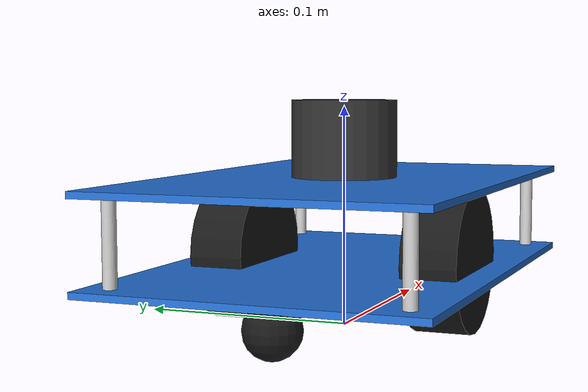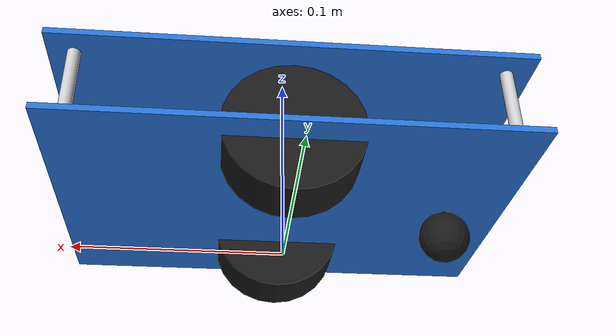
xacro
<?xml version="1.0"?>
<robot name="cslam_robot" xmlns:xacro="http://www.ros.org/wiki/xacro">

  <xacro:arg name="robot_name" default="robot2"/>
  <xacro:property name="p" value="$(arg robot_name)/"/>

  <xacro:property name="length" value="0.22"/>
  <xacro:property name="width" value="0.15"/>
  <xacro:property name="plate_thickness" value="0.003"/>
  <xacro:property name="bottom_plate_z" value="0.025"/>
  <xacro:property name="layer_gap" value="0.04"/>
  <xacro:property name="top_plate_z" value="${bottom_plate_z + layer_gap}"/>
  <xacro:property name="lidar_height" value="0.035"/>
  <xacro:property name="lidar_radius" value="0.024"/>
  <xacro:property name="lidar_x" value="0.0"/>
  <xacro:property name="wheel_radius" value="0.0325"/>
  <xacro:property name="wheel_width" value="0.025"/>
  <xacro:property name="wheel_separation" value="0.099"/>
  <xacro:property name="caster_radius" value="0.0125"/>
  <xacro:property name="caster_x" value="-0.08"/>

  <material name="plate"><color rgba="0.15 0.45 0.85 1"/></material>
  <material name="standoff"><color rgba="0.8 0.8 0.8 1"/></material>
  <material name="black"><color rgba="0.1 0.1 0.1 1"/></material>
  <material name="lidar"><color rgba="0.2 0.2 0.2 1"/></material>

  <link name="${p}base_link"/>

  <!-- Two chassis plates -->
  <xacro:macro name="plate" params="name z">
    <link name="${p}${name}">
      <visual>
        <origin xyz="0 0 ${plate_thickness / 2}"/>
        <geometry><box size="${length} ${width} ${plate_thickness}"/></geometry>
        <material name="plate"/>
      </visual>
      <collision>
        <origin xyz="0 0 ${plate_thickness / 2}"/>
        <geometry><box size="${length} ${width} ${plate_thickness}"/></geometry>
      </collision>
    </link>
    <joint name="${p}${name}_joint" type="fixed">
      <parent link="${p}base_link"/>
      <child link="${p}${name}"/>
      <origin xyz="0 0 ${z}"/>
    </joint>
  </xacro:macro>

  <xacro:plate name="bottom_plate" z="${bottom_plate_z}"/>
  <xacro:plate name="top_plate" z="${top_plate_z}"/>

  <!-- Standoffs between the plates (visual only) -->
  <xacro:macro name="standoff" params="name x y">
    <link name="${p}${name}">
      <visual>
        <geometry><cylinder radius="0.003" length="${layer_gap}"/></geometry>
        <material name="standoff"/>
      </visual>
    </link>
    <joint name="${p}${name}_joint" type="fixed">
      <parent link="${p}base_link"/>
      <child link="${p}${name}"/>
      <origin xyz="${x} ${y} ${bottom_plate_z + plate_thickness + layer_gap / 2}"/>
    </joint>
  </xacro:macro>

  <xacro:standoff name="standoff_fl" x="${length / 2 - 0.012}" y="${width / 2 - 0.012}"/>
  <xacro:standoff name="standoff_fr" x="${length / 2 - 0.012}" y="${-(width / 2 - 0.012)}"/>
  <xacro:standoff name="standoff_bl" x="${-(length / 2 - 0.012)}" y="${width / 2 - 0.012}"/>
  <xacro:standoff name="standoff_br" x="${-(length / 2 - 0.012)}" y="${-(width / 2 - 0.012)}"/>

  <!-- Drive wheels. Fixed joints: nothing publishes wheel joint states, and
       a continuous joint without them would not be drawn. -->
  <xacro:macro name="wheel" params="side y">
    <link name="${p}${side}_wheel">
      <visual>
        <origin rpy="${pi / 2} 0 0"/>
        <geometry><cylinder radius="${wheel_radius}" length="${wheel_width}"/></geometry>
        <material name="black"/>
      </visual>
    </link>
    <joint name="${p}${side}_wheel_joint" type="fixed">
      <parent link="${p}base_link"/>
      <child link="${p}${side}_wheel"/>
      <origin xyz="0 ${y} ${wheel_radius}"/>
    </joint>
  </xacro:macro>

  <xacro:wheel side="left" y="${wheel_separation / 2}"/>
  <xacro:wheel side="right" y="${-wheel_separation / 2}"/>

  <link name="${p}caster">
    <visual>
      <geometry><sphere radius="${caster_radius}"/></geometry>
      <material name="black"/>
    </visual>
  </link>
  <joint name="${p}caster_joint" type="fixed">
    <parent link="${p}base_link"/>
    <child link="${p}caster"/>
    <origin xyz="${caster_x} 0 ${caster_radius}"/>
  </joint>

  <!-- LD19 on the top plate. lidar_link is at the middle of the unit,
       roughly the scan plane. -->
  <link name="${p}lidar_link">
    <visual>
      <geometry><cylinder radius="${lidar_radius}" length="${lidar_height}"/></geometry>
      <material name="lidar"/>
    </visual>
  </link>
  <joint name="${p}lidar_joint" type="fixed">
    <parent link="${p}base_link"/>
    <child link="${p}lidar_link"/>
    <origin xyz="${lidar_x} 0 ${top_plate_z + plate_thickness + lidar_height / 2}"/>
  </joint>

  <!-- BMI160 between the plates -->
  <link name="${p}imu_link"/>
  <joint name="${p}imu_joint" type="fixed">
    <parent link="${p}base_link"/>
    <child link="${p}imu_link"/>
    <origin xyz="0 0 ${bottom_plate_z + plate_thickness + layer_gap / 2}"/>
  </joint>

</robot>
